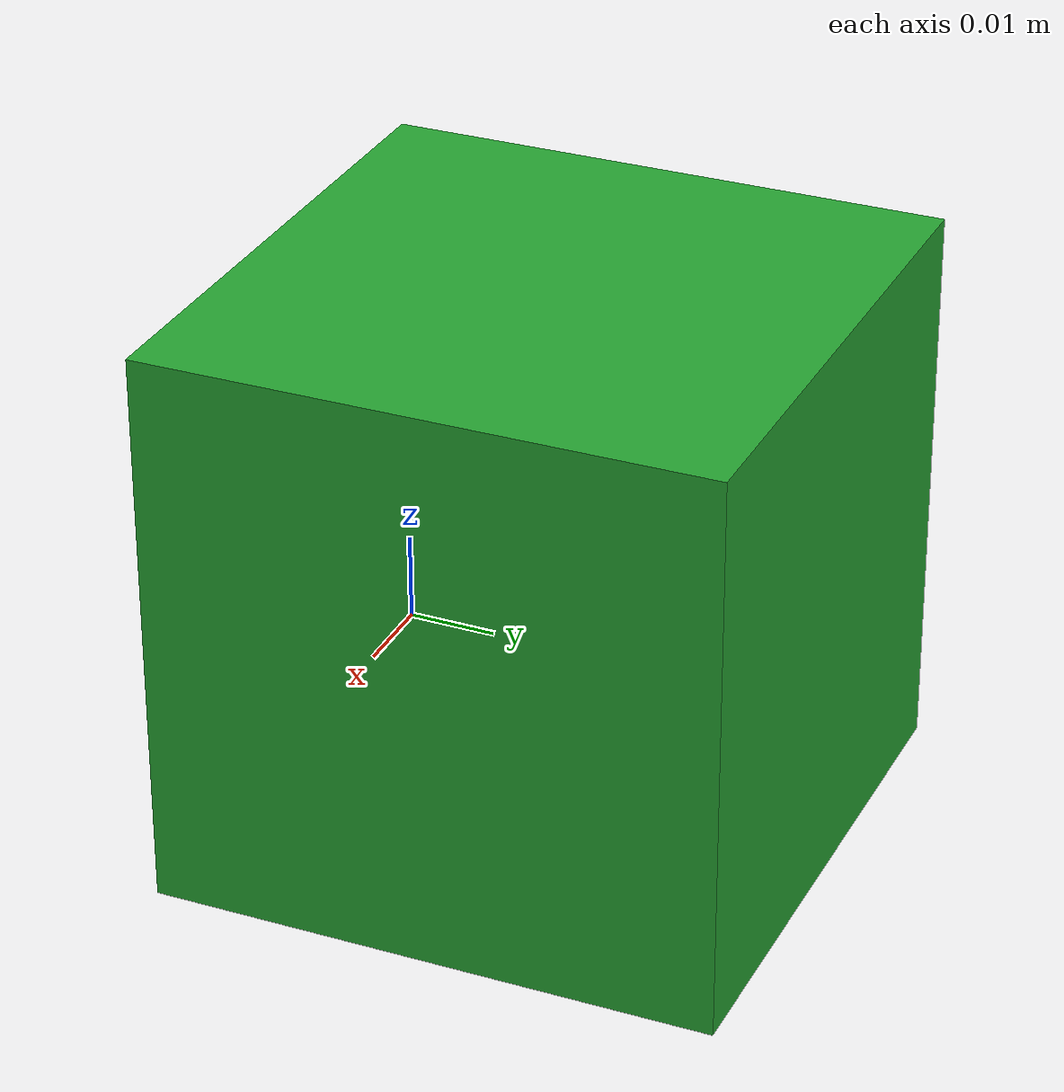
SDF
<?xml version='1.0'?>
<sdf version='1.7'>
  <model name='grasp_cube'>
    <link name='cube::cube'>
      <inertial>
        <pose>0 0 0 0 -0 0</pose>
        <mass>0.25</mass>
        <inertia>
          <ixx>0.001</ixx>
          <ixy>0</ixy>
          <ixz>0</ixz>
          <iyy>0.001</iyy>
          <iyz>0</iyz>
          <izz>0.001</izz>
        </inertia>
      </inertial>
      <gravity>1</gravity>
      <velocity_decay>
        <linear>0</linear>
        <angular>0</angular>
      </velocity_decay>
      <self_collide>0</self_collide>
      <enable_wind>0</enable_wind>
      <kinematic>0</kinematic>
      <pose>0 0 0 0 -0 0</pose>
      <visual name='visual'>
        <pose>0.03 0.03 0.03 0 -0 0</pose>
        <geometry>
          <box>
            <size>0.06 0.06 0.06</size>
          </box>
        </geometry>
        <material>
          <script>
            <name>Gazebo/Green</name>
            <uri>file://media/materials/scripts/gazebo.material</uri>
          </script>
          <shader type='pixel'>
            <normal_map>__default__</normal_map>
          </shader>
          <ambient>0 1 0 1</ambient>
          <diffuse>0 1 0 1</diffuse>
          <specular>0.1 0.1 0.1 1</specular>
          <emissive>0 0 0 1</emissive>
        </material>
        <transparency>0</transparency>
        <cast_shadows>1</cast_shadows>
      </visual>
      <collision name='collision'>
        <laser_retro>0</laser_retro>
        <max_contacts>10</max_contacts>
        <pose>0.03 0.03 0.03 0 -0 0</pose>
        <geometry>
          <box>
            <size>0.06 0.06 0.06</size>
          </box>
        </geometry>
        <surface>
          <friction>
            <ode>
              <mu>30</mu>
              <mu2>30</mu2>
              <fdir1>0 0 0</fdir1>
              <slip1>0</slip1>
              <slip2>0</slip2>
            </ode>
            <torsional>
              <coefficient>1</coefficient>
              <patch_radius>0</patch_radius>
              <surface_radius>0</surface_radius>
              <use_patch_radius>1</use_patch_radius>
              <ode>
                <slip>0</slip>
              </ode>
            </torsional>
          </friction>
          <bounce>
            <restitution_coefficient>0</restitution_coefficient>
            <threshold>1e+06</threshold>
          </bounce>
          <contact>
            <collide_without_contact>0</collide_without_contact>
            <collide_without_contact_bitmask>1</collide_without_contact_bitmask>
            <collide_bitmask>1</collide_bitmask>
            <ode>
              <soft_cfm>0</soft_cfm>
              <soft_erp>0.2</soft_erp>
              <kp>1e+06</kp>
              <kd>1e+06</kd>
              <max_vel>1</max_vel>
              <min_depth>0.002</min_depth>
            </ode>
            <bullet>
              <split_impulse>1</split_impulse>
              <split_impulse_penetration_threshold>-0.01</split_impulse_penetration_threshold>
              <soft_cfm>0</soft_cfm>
              <soft_erp>0.2</soft_erp>
              <kp>1e+06</kp>
              <kd>1e+06</kd>
            </bullet>
          </contact>
        </surface>
      </collision>
    </link>
    <static>0</static>
    <allow_auto_disable>1</allow_auto_disable>
  </model>
</sdf>
